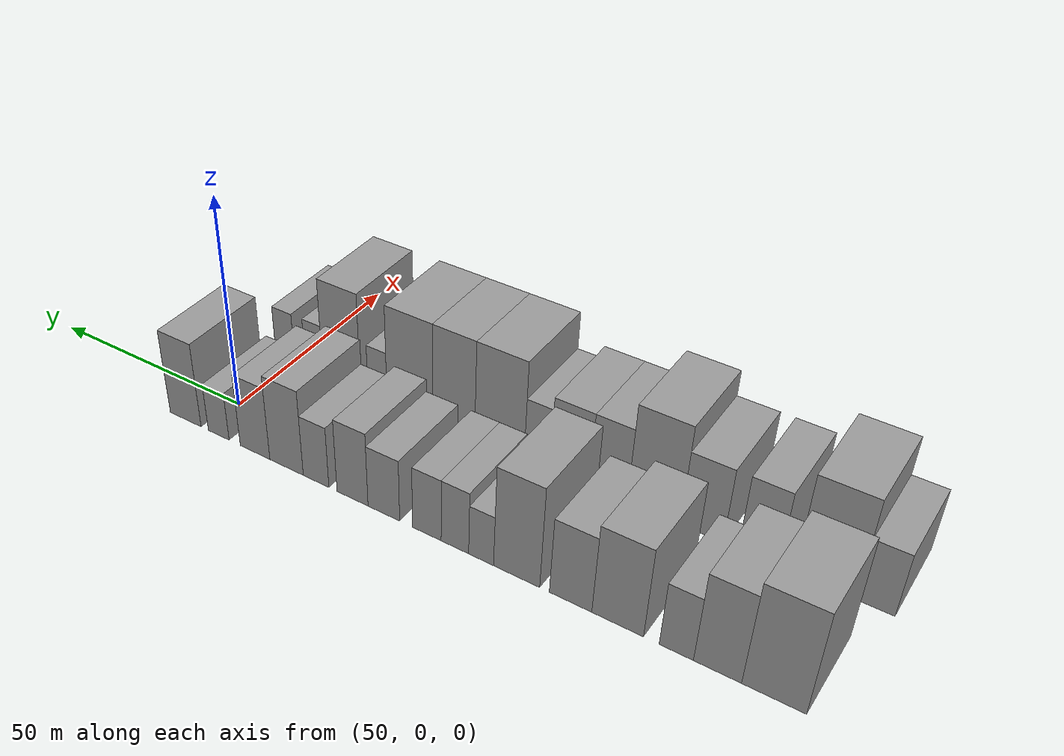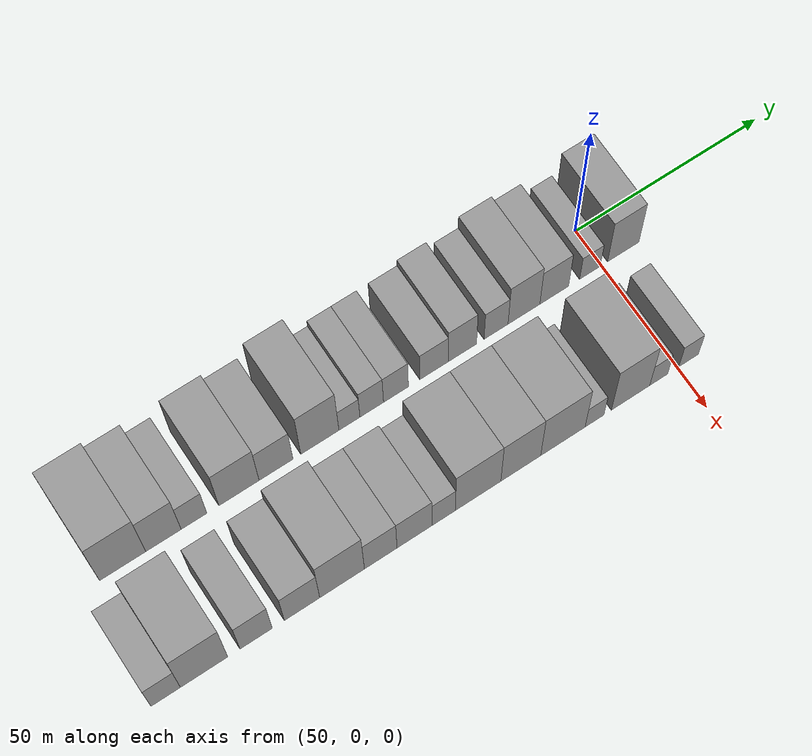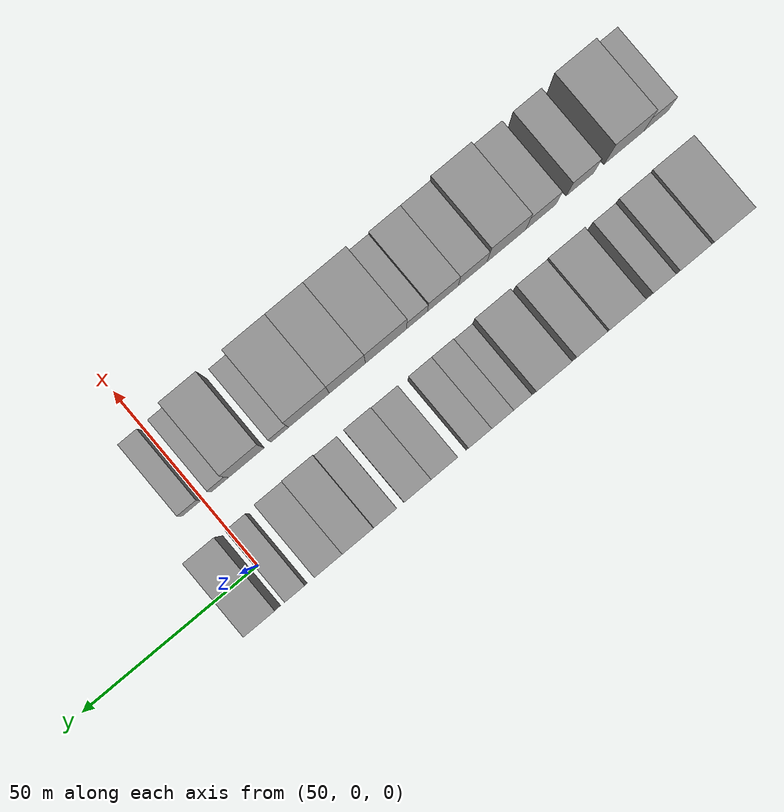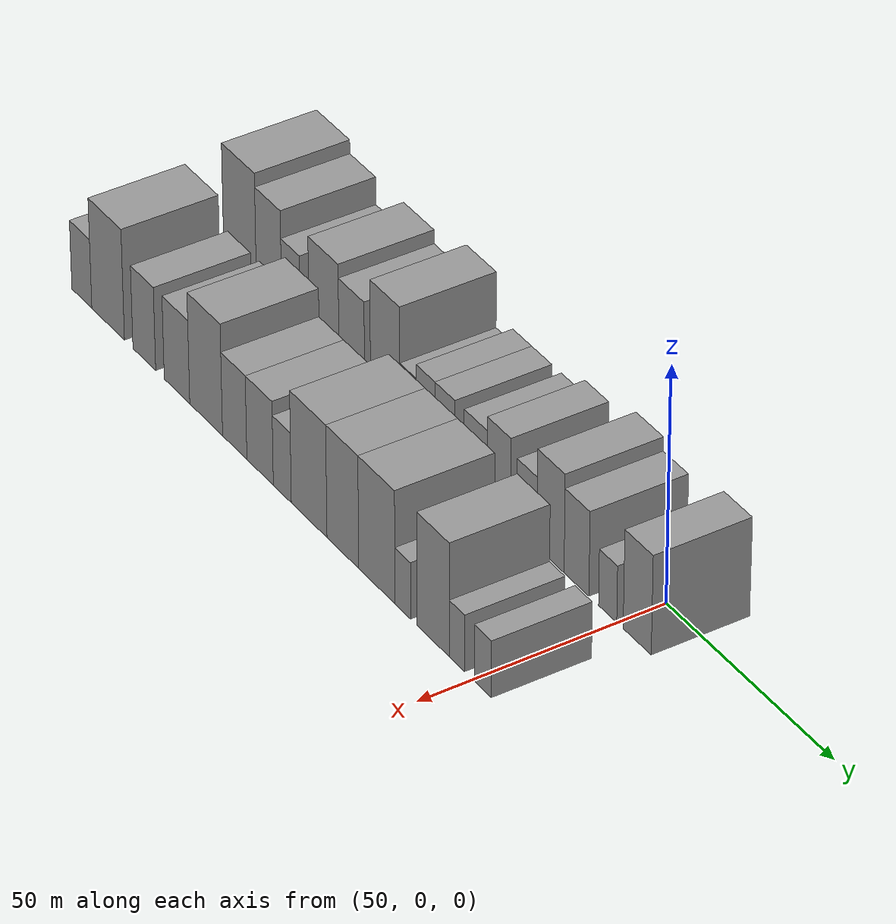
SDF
<sdf version="1.6">
 <world name="default">
  <model name="building_19">
   <static>1</static>
   <pose>50.0000 -124.2672 0 0.000000 0.000000 0.000000</pose>
   <link name="link">
    <pose>0 0 12.00 0 0 0</pose>
    <collision name="collision"><geometry><box><size>20.0000 11.4578 24.0000</size></box></geometry></collision>
    <visual name="visual">
     <cast_shadows>0</cast_shadows>
     <geometry><box><size>20.0000 11.4578 24.0000</size></box></geometry>
     <material>
      <script>
       <uri>model://grey_wall/materials/scripts</uri>
       <uri>model://grey_wall/materials/textures</uri>
       <name>vrc/grey_wall</name>
      </script>
     </material>
    </visual>
   </link>
  </model>
  <model name="building_20">
   <static>1</static>
   <pose>50.0000 -114.1282 0 0.000000 0.000000 0.000000</pose>
   <link name="link">
    <pose>0 0 10.50 0 0 0</pose>
    <collision name="collision"><geometry><box><size>20.0000 8.8202 21.0000</size></box></geometry></collision>
    <visual name="visual">
     <cast_shadows>0</cast_shadows>
     <geometry><box><size>20.0000 8.8202 21.0000</size></box></geometry>
     <material>
      <script>
       <uri>model://grey_wall/materials/scripts</uri>
       <uri>model://grey_wall/materials/textures</uri>
       <name>vrc/grey_wall</name>
      </script>
     </material>
    </visual>
   </link>
  </model>
  <model name="building_21">
   <static>1</static>
   <pose>50.0000 -106.4901 0 0.000000 0.000000 0.000000</pose>
   <link name="link">
    <pose>0 0 7.50 0 0 0</pose>
    <collision name="collision"><geometry><box><size>20.0000 6.4560 15.0000</size></box></geometry></collision>
    <visual name="visual">
     <cast_shadows>0</cast_shadows>
     <geometry><box><size>20.0000 6.4560 15.0000</size></box></geometry>
     <material>
      <script>
       <uri>model://grey_wall/materials/scripts</uri>
       <uri>model://grey_wall/materials/textures</uri>
       <name>vrc/grey_wall</name>
      </script>
     </material>
    </visual>
   </link>
  </model>
  <model name="building_22">
   <static>1</static>
   <pose>50.0000 -95.1648 0 0.000000 0.000000 0.000000</pose>
   <link name="link">
    <pose>0 0 10.50 0 0 0</pose>
    <collision name="collision"><geometry><box><size>20.0000 10.1945 21.0000</size></box></geometry></collision>
    <visual name="visual">
     <cast_shadows>0</cast_shadows>
     <geometry><box><size>20.0000 10.1945 21.0000</size></box></geometry>
     <material>
      <script>
       <uri>model://grey_wall/materials/scripts</uri>
       <uri>model://grey_wall/materials/textures</uri>
       <name>vrc/grey_wall</name>
      </script>
     </material>
    </visual>
   </link>
  </model>
  <model name="building_23">
   <static>1</static>
   <pose>50.0000 -85.7402 0 0.000000 0.000000 0.000000</pose>
   <link name="link">
    <pose>0 0 9.00 0 0 0</pose>
    <collision name="collision"><geometry><box><size>20.0000 8.6548 18.0000</size></box></geometry></collision>
    <visual name="visual">
     <cast_shadows>0</cast_shadows>
     <geometry><box><size>20.0000 8.6548 18.0000</size></box></geometry>
     <material>
      <script>
       <uri>model://grey_wall/materials/scripts</uri>
       <uri>model://grey_wall/materials/textures</uri>
       <name>vrc/grey_wall</name>
      </script>
     </material>
    </visual>
   </link>
  </model>
  <model name="building_24">
   <static>1</static>
   <pose>50.0000 -74.5059 0 0.000000 0.000000 0.000000</pose>
   <link name="link">
    <pose>0 0 12.00 0 0 0</pose>
    <collision name="collision"><geometry><box><size>20.0000 9.8138 24.0000</size></box></geometry></collision>
    <visual name="visual">
     <cast_shadows>0</cast_shadows>
     <geometry><box><size>20.0000 9.8138 24.0000</size></box></geometry>
     <material>
      <script>
       <uri>model://grey_wall/materials/scripts</uri>
       <uri>model://grey_wall/materials/textures</uri>
       <name>vrc/grey_wall</name>
      </script>
     </material>
    </visual>
   </link>
  </model>
  <model name="building_25">
   <static>1</static>
   <pose>50.0000 -66.8826 0 0.000000 0.000000 0.000000</pose>
   <link name="link">
    <pose>0 0 6.00 0 0 0</pose>
    <collision name="collision"><geometry><box><size>20.0000 5.4328 12.0000</size></box></geometry></collision>
    <visual name="visual">
     <cast_shadows>0</cast_shadows>
     <geometry><box><size>20.0000 5.4328 12.0000</size></box></geometry>
     <material>
      <script>
       <uri>model://grey_wall/materials/scripts</uri>
       <uri>model://grey_wall/materials/textures</uri>
       <name>vrc/grey_wall</name>
      </script>
     </material>
    </visual>
   </link>
  </model>
  <model name="building_26">
   <static>1</static>
   <pose>50.0000 -61.1020 0 0.000000 0.000000 0.000000</pose>
   <link name="link">
    <pose>0 0 7.50 0 0 0</pose>
    <collision name="collision"><geometry><box><size>20.0000 6.1285 15.0000</size></box></geometry></collision>
    <visual name="visual">
     <cast_shadows>0</cast_shadows>
     <geometry><box><size>20.0000 6.1285 15.0000</size></box></geometry>
     <material>
      <script>
       <uri>model://grey_wall/materials/scripts</uri>
       <uri>model://grey_wall/materials/textures</uri>
       <name>vrc/grey_wall</name>
      </script>
     </material>
    </visual>
   </link>
  </model>
  <model name="building_27">
   <static>1</static>
   <pose>50.0000 -54.7877 0 0.000000 0.000000 0.000000</pose>
   <link name="link">
    <pose>0 0 7.50 0 0 0</pose>
    <collision name="collision"><geometry><box><size>20.0000 6.5000 15.0000</size></box></geometry></collision>
    <visual name="visual">
     <cast_shadows>0</cast_shadows>
     <geometry><box><size>20.0000 6.5000 15.0000</size></box></geometry>
     <material>
      <script>
       <uri>model://grey_wall/materials/scripts</uri>
       <uri>model://grey_wall/materials/textures</uri>
       <name>vrc/grey_wall</name>
      </script>
     </material>
    </visual>
   </link>
  </model>
  <model name="building_28">
   <static>1</static>
   <pose>50.0000 -44.8088 0 0.000000 0.000000 0.000000</pose>
   <link name="link">
    <pose>0 0 7.50 0 0 0</pose>
    <collision name="collision"><geometry><box><size>20.0000 7.4579 15.0000</size></box></geometry></collision>
    <visual name="visual">
     <cast_shadows>0</cast_shadows>
     <geometry><box><size>20.0000 7.4579 15.0000</size></box></geometry>
     <material>
      <script>
       <uri>model://grey_wall/materials/scripts</uri>
       <uri>model://grey_wall/materials/textures</uri>
       <name>vrc/grey_wall</name>
      </script>
     </material>
    </visual>
   </link>
  </model>
  <model name="building_29">
   <static>1</static>
   <pose>50.0000 -37.3295 0 0.000000 0.000000 0.000000</pose>
   <link name="link">
    <pose>0 0 9.00 0 0 0</pose>
    <collision name="collision"><geometry><box><size>20.0000 7.5007 18.0000</size></box></geometry></collision>
    <visual name="visual">
     <cast_shadows>0</cast_shadows>
     <geometry><box><size>20.0000 7.5007 18.0000</size></box></geometry>
     <material>
      <script>
       <uri>model://grey_wall/materials/scripts</uri>
       <uri>model://grey_wall/materials/textures</uri>
       <name>vrc/grey_wall</name>
      </script>
     </material>
    </visual>
   </link>
  </model>
  <model name="building_30">
   <static>1</static>
   <pose>50.0000 -28.3848 0 0.000000 0.000000 0.000000</pose>
   <link name="link">
    <pose>0 0 7.50 0 0 0</pose>
    <collision name="collision"><geometry><box><size>20.0000 6.3886 15.0000</size></box></geometry></collision>
    <visual name="visual">
     <cast_shadows>0</cast_shadows>
     <geometry><box><size>20.0000 6.3886 15.0000</size></box></geometry>
     <material>
      <script>
       <uri>model://grey_wall/materials/scripts</uri>
       <uri>model://grey_wall/materials/textures</uri>
       <name>vrc/grey_wall</name>
      </script>
     </material>
    </visual>
   </link>
  </model>
  <model name="building_31">
   <static>1</static>
   <pose>50.0000 -20.9215 0 0.000000 0.000000 0.000000</pose>
   <link name="link">
    <pose>0 0 10.50 0 0 0</pose>
    <collision name="collision"><geometry><box><size>20.0000 8.5380 21.0000</size></box></geometry></collision>
    <visual name="visual">
     <cast_shadows>0</cast_shadows>
     <geometry><box><size>20.0000 8.5380 21.0000</size></box></geometry>
     <material>
      <script>
       <uri>model://grey_wall/materials/scripts</uri>
       <uri>model://grey_wall/materials/textures</uri>
       <name>vrc/grey_wall</name>
      </script>
     </material>
    </visual>
   </link>
  </model>
  <model name="building_32">
   <static>1</static>
   <pose>50.0000 -12.7740 0 0.000000 0.000000 0.000000</pose>
   <link name="link">
    <pose>0 0 9.00 0 0 0</pose>
    <collision name="collision"><geometry><box><size>20.0000 7.7571 18.0000</size></box></geometry></collision>
    <visual name="visual">
     <cast_shadows>0</cast_shadows>
     <geometry><box><size>20.0000 7.7571 18.0000</size></box></geometry>
     <material>
      <script>
       <uri>model://grey_wall/materials/scripts</uri>
       <uri>model://grey_wall/materials/textures</uri>
       <name>vrc/grey_wall</name>
      </script>
     </material>
    </visual>
   </link>
  </model>
  <model name="building_33">
   <static>1</static>
   <pose>50.0000 -3.0939 0 0.000000 0.000000 0.000000</pose>
   <link name="link">
    <pose>0 0 6.00 0 0 0</pose>
    <collision name="collision"><geometry><box><size>20.0000 5.6031 12.0000</size></box></geometry></collision>
    <visual name="visual">
     <cast_shadows>0</cast_shadows>
     <geometry><box><size>20.0000 5.6031 12.0000</size></box></geometry>
     <material>
      <script>
       <uri>model://grey_wall/materials/scripts</uri>
       <uri>model://grey_wall/materials/textures</uri>
       <name>vrc/grey_wall</name>
      </script>
     </material>
    </visual>
   </link>
  </model>
  <model name="building_34">
   <static>1</static>
   <pose>50.0000 5.9939 0 0.000000 0.000000 0.000000</pose>
   <link name="link">
    <pose>0 0 10.50 0 0 0</pose>
    <collision name="collision"><geometry><box><size>20.0000 8.5725 21.0000</size></box></geometry></collision>
    <visual name="visual">
     <cast_shadows>0</cast_shadows>
     <geometry><box><size>20.0000 8.5725 21.0000</size></box></geometry>
     <material>
      <script>
       <uri>model://grey_wall/materials/scripts</uri>
       <uri>model://grey_wall/materials/textures</uri>
       <name>vrc/grey_wall</name>
      </script>
     </material>
    </visual>
   </link>
  </model>
  <model name="building_77">
   <static>1</static>
   <pose>79.0000 -131.2166 0 0.000000 0.000000 0.000000</pose>
   <link name="link">
    <pose>0 0 7.50 0 0 0</pose>
    <collision name="collision"><geometry><box><size>20.0000 7.1662 15.0000</size></box></geometry></collision>
    <visual name="visual">
     <cast_shadows>0</cast_shadows>
     <geometry><box><size>20.0000 7.1662 15.0000</size></box></geometry>
     <material>
      <script>
       <uri>model://grey_wall/materials/scripts</uri>
       <uri>model://grey_wall/materials/textures</uri>
       <name>vrc/grey_wall</name>
      </script>
     </material>
    </visual>
   </link>
  </model>
  <model name="building_78">
   <static>1</static>
   <pose>79.0000 -121.8161 0 0.000000 0.000000 0.000000</pose>
   <link name="link">
    <pose>0 0 12.00 0 0 0</pose>
    <collision name="collision"><geometry><box><size>20.0000 11.6349 24.0000</size></box></geometry></collision>
    <visual name="visual">
     <cast_shadows>0</cast_shadows>
     <geometry><box><size>20.0000 11.6349 24.0000</size></box></geometry>
     <material>
      <script>
       <uri>model://grey_wall/materials/scripts</uri>
       <uri>model://grey_wall/materials/textures</uri>
       <name>vrc/grey_wall</name>
      </script>
     </material>
    </visual>
   </link>
  </model>
  <model name="building_79">
   <static>1</static>
   <pose>79.0000 -108.9992 0 0.000000 0.000000 0.000000</pose>
   <link name="link">
    <pose>0 0 9.00 0 0 0</pose>
    <collision name="collision"><geometry><box><size>20.0000 7.9988 18.0000</size></box></geometry></collision>
    <visual name="visual">
     <cast_shadows>0</cast_shadows>
     <geometry><box><size>20.0000 7.9988 18.0000</size></box></geometry>
     <material>
      <script>
       <uri>model://grey_wall/materials/scripts</uri>
       <uri>model://grey_wall/materials/textures</uri>
       <name>vrc/grey_wall</name>
      </script>
     </material>
    </visual>
   </link>
  </model>
  <model name="building_80">
   <static>1</static>
   <pose>79.0000 -97.5665 0 0.000000 0.000000 0.000000</pose>
   <link name="link">
    <pose>0 0 9.00 0 0 0</pose>
    <collision name="collision"><geometry><box><size>20.0000 8.8666 18.0000</size></box></geometry></collision>
    <visual name="visual">
     <cast_shadows>0</cast_shadows>
     <geometry><box><size>20.0000 8.8666 18.0000</size></box></geometry>
     <material>
      <script>
       <uri>model://grey_wall/materials/scripts</uri>
       <uri>model://grey_wall/materials/textures</uri>
       <name>vrc/grey_wall</name>
      </script>
     </material>
    </visual>
   </link>
  </model>
  <model name="building_81">
   <static>1</static>
   <pose>79.0000 -87.4960 0 0.000000 0.000000 0.000000</pose>
   <link name="link">
    <pose>0 0 12.00 0 0 0</pose>
    <collision name="collision"><geometry><box><size>20.0000 11.2745 24.0000</size></box></geometry></collision>
    <visual name="visual">
     <cast_shadows>0</cast_shadows>
     <geometry><box><size>20.0000 11.2745 24.0000</size></box></geometry>
     <material>
      <script>
       <uri>model://grey_wall/materials/scripts</uri>
       <uri>model://grey_wall/materials/textures</uri>
       <name>vrc/grey_wall</name>
      </script>
     </material>
    </visual>
   </link>
  </model>
  <model name="building_82">
   <static>1</static>
   <pose>79.0000 -77.7199 0 0.000000 0.000000 0.000000</pose>
   <link name="link">
    <pose>0 0 9.00 0 0 0</pose>
    <collision name="collision"><geometry><box><size>20.0000 8.2777 18.0000</size></box></geometry></collision>
    <visual name="visual">
     <cast_shadows>0</cast_shadows>
     <geometry><box><size>20.0000 8.2777 18.0000</size></box></geometry>
     <material>
      <script>
       <uri>model://grey_wall/materials/scripts</uri>
       <uri>model://grey_wall/materials/textures</uri>
       <name>vrc/grey_wall</name>
      </script>
     </material>
    </visual>
   </link>
  </model>
  <model name="building_83">
   <static>1</static>
   <pose>79.0000 -69.1218 0 0.000000 0.000000 0.000000</pose>
   <link name="link">
    <pose>0 0 9.00 0 0 0</pose>
    <collision name="collision"><geometry><box><size>20.0000 8.9186 18.0000</size></box></geometry></collision>
    <visual name="visual">
     <cast_shadows>0</cast_shadows>
     <geometry><box><size>20.0000 8.9186 18.0000</size></box></geometry>
     <material>
      <script>
       <uri>model://grey_wall/materials/scripts</uri>
       <uri>model://grey_wall/materials/textures</uri>
       <name>vrc/grey_wall</name>
      </script>
     </material>
    </visual>
   </link>
  </model>
  <model name="building_84">
   <static>1</static>
   <pose>79.0000 -61.6561 0 0.000000 0.000000 0.000000</pose>
   <link name="link">
    <pose>0 0 7.50 0 0 0</pose>
    <collision name="collision"><geometry><box><size>20.0000 6.0129 15.0000</size></box></geometry></collision>
    <visual name="visual">
     <cast_shadows>0</cast_shadows>
     <geometry><box><size>20.0000 6.0129 15.0000</size></box></geometry>
     <material>
      <script>
       <uri>model://grey_wall/materials/scripts</uri>
       <uri>model://grey_wall/materials/textures</uri>
       <name>vrc/grey_wall</name>
      </script>
     </material>
    </visual>
   </link>
  </model>
  <model name="building_85">
   <static>1</static>
   <pose>79.0000 -52.7440 0 0.000000 0.000000 0.000000</pose>
   <link name="link">
    <pose>0 0 12.00 0 0 0</pose>
    <collision name="collision"><geometry><box><size>20.0000 11.8112 24.0000</size></box></geometry></collision>
    <visual name="visual">
     <cast_shadows>0</cast_shadows>
     <geometry><box><size>20.0000 11.8112 24.0000</size></box></geometry>
     <material>
      <script>
       <uri>model://grey_wall/materials/scripts</uri>
       <uri>model://grey_wall/materials/textures</uri>
       <name>vrc/grey_wall</name>
      </script>
     </material>
    </visual>
   </link>
  </model>
  <model name="building_86">
   <static>1</static>
   <pose>79.0000 -41.6299 0 0.000000 0.000000 0.000000</pose>
   <link name="link">
    <pose>0 0 12.00 0 0 0</pose>
    <collision name="collision"><geometry><box><size>20.0000 10.4170 24.0000</size></box></geometry></collision>
    <visual name="visual">
     <cast_shadows>0</cast_shadows>
     <geometry><box><size>20.0000 10.4170 24.0000</size></box></geometry>
     <material>
      <script>
       <uri>model://grey_wall/materials/scripts</uri>
       <uri>model://grey_wall/materials/textures</uri>
       <name>vrc/grey_wall</name>
      </script>
     </material>
    </visual>
   </link>
  </model>
  <model name="building_87">
   <static>1</static>
   <pose>79.0000 -30.5633 0 0.000000 0.000000 0.000000</pose>
   <link name="link">
    <pose>0 0 12.00 0 0 0</pose>
    <collision name="collision"><geometry><box><size>20.0000 11.7161 24.0000</size></box></geometry></collision>
    <visual name="visual">
     <cast_shadows>0</cast_shadows>
     <geometry><box><size>20.0000 11.7161 24.0000</size></box></geometry>
     <material>
      <script>
       <uri>model://grey_wall/materials/scripts</uri>
       <uri>model://grey_wall/materials/textures</uri>
       <name>vrc/grey_wall</name>
      </script>
     </material>
    </visual>
   </link>
  </model>
  <model name="building_88">
   <static>1</static>
   <pose>79.0000 -22.2012 0 0.000000 0.000000 0.000000</pose>
   <link name="link">
    <pose>0 0 6.00 0 0 0</pose>
    <collision name="collision"><geometry><box><size>20.0000 5.0082 12.0000</size></box></geometry></collision>
    <visual name="visual">
     <cast_shadows>0</cast_shadows>
     <geometry><box><size>20.0000 5.0082 12.0000</size></box></geometry>
     <material>
      <script>
       <uri>model://grey_wall/materials/scripts</uri>
       <uri>model://grey_wall/materials/textures</uri>
       <name>vrc/grey_wall</name>
      </script>
     </material>
    </visual>
   </link>
  </model>
  <model name="building_89">
   <static>1</static>
   <pose>79.0000 -12.5825 0 0.000000 0.000000 0.000000</pose>
   <link name="link">
    <pose>0 0 12.00 0 0 0</pose>
    <collision name="collision"><geometry><box><size>20.0000 10.2291 24.0000</size></box></geometry></collision>
    <visual name="visual">
     <cast_shadows>0</cast_shadows>
     <geometry><box><size>20.0000 10.2291 24.0000</size></box></geometry>
     <material>
      <script>
       <uri>model://grey_wall/materials/scripts</uri>
       <uri>model://grey_wall/materials/textures</uri>
       <name>vrc/grey_wall</name>
      </script>
     </material>
    </visual>
   </link>
  </model>
  <model name="building_90">
   <static>1</static>
   <pose>79.0000 -5.0557 0 0.000000 0.000000 0.000000</pose>
   <link name="link">
    <pose>0 0 6.00 0 0 0</pose>
    <collision name="collision"><geometry><box><size>20.0000 4.8245 12.0000</size></box></geometry></collision>
    <visual name="visual">
     <cast_shadows>0</cast_shadows>
     <geometry><box><size>20.0000 4.8245 12.0000</size></box></geometry>
     <material>
      <script>
       <uri>model://grey_wall/materials/scripts</uri>
       <uri>model://grey_wall/materials/textures</uri>
       <name>vrc/grey_wall</name>
      </script>
     </material>
    </visual>
   </link>
  </model>
  <model name="building_91">
   <static>1</static>
   <pose>79.0000 3.0224 0 0.000000 0.000000 0.000000</pose>
   <link name="link">
    <pose>0 0 6.00 0 0 0</pose>
    <collision name="collision"><geometry><box><size>20.0000 5.3316 12.0000</size></box></geometry></collision>
    <visual name="visual">
     <cast_shadows>0</cast_shadows>
     <geometry><box><size>20.0000 5.3316 12.0000</size></box></geometry>
     <material>
      <script>
       <uri>model://grey_wall/materials/scripts</uri>
       <uri>model://grey_wall/materials/textures</uri>
       <name>vrc/grey_wall</name>
      </script>
     </material>
    </visual>
   </link>
  </model>
 </world>
</sdf>
